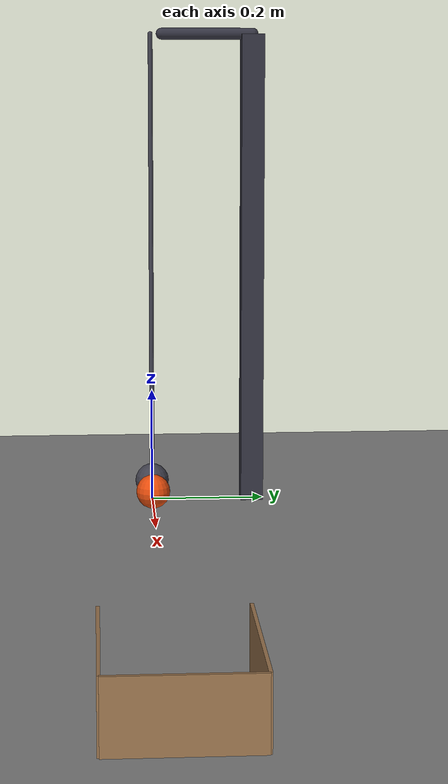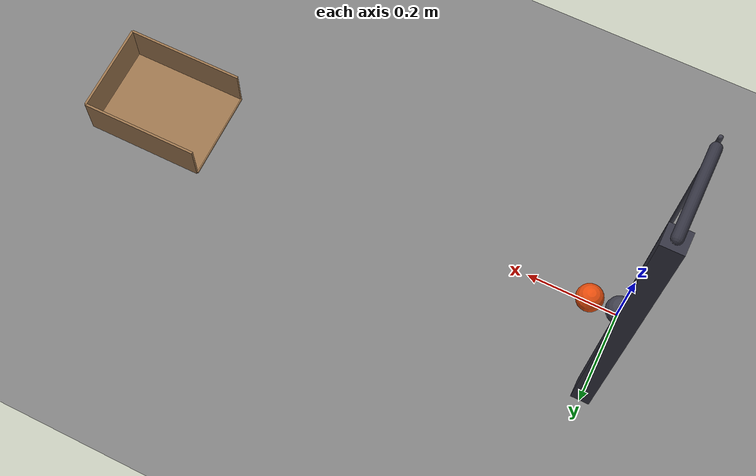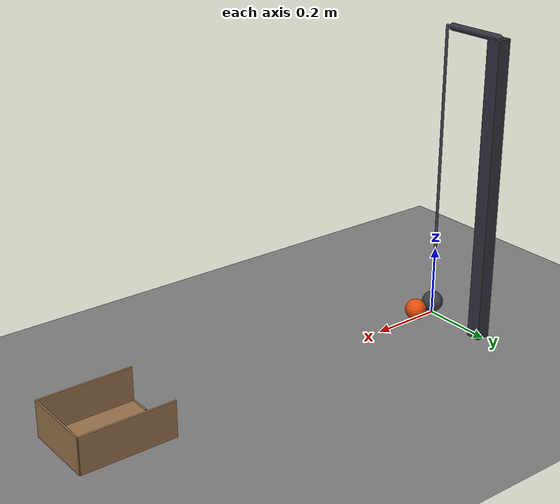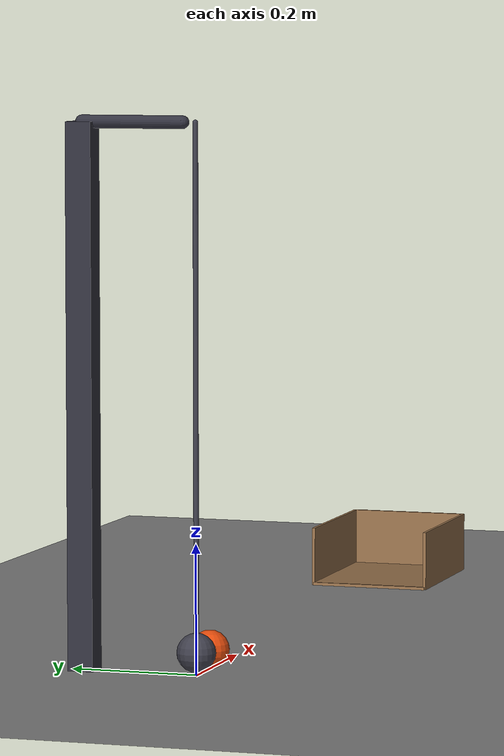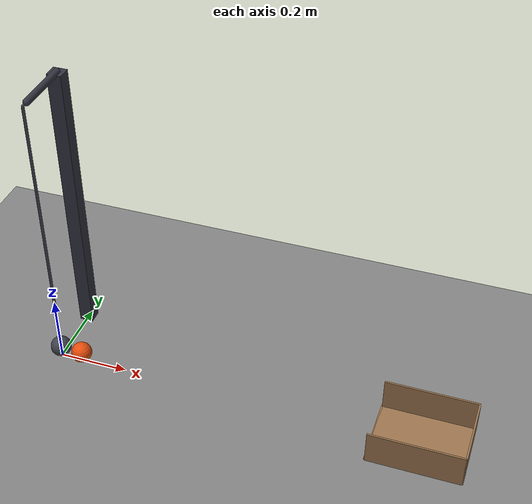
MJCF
<mujoco model="pendulum_rolls_a_ball_into_a_cup">
  <compiler angle="radian"/>
  <option timestep="0.002"/>
  <worldbody>
    <geom name="floor" type="plane" size="4 4 0.1" friction="0.6 0.001 0.0005"/>
    <body name="ball" pos="0.065 0 0.03">
      <freejoint/>
      <geom name="ball" type="sphere" pos="0 0 0" size="0.03" mass="0.08" condim="6" friction="0.6 0.001 0.0005" solref="0.01 1" rgba="0.9 0.3 0.05 1"/>
    </body>
    <body name="pendulum" pos="0 0 0.835">
      <joint name="pendulum_hinge" type="hinge" pos="0 0 0" axis="0 1 0" limited="true" range="-1.0472 1.0472" damping="0.01"/>
      <geom name="pendulum" type="sphere" pos="0 0 -0.8" size="0.03" mass="0.3" solref="0.01 1" rgba="0.25 0.25 0.3 1"/>
      <geom name="pendulum rod" type="capsule" size="0.004" fromto="0 0 0 0 0 -0.77" mass="0.02" rgba="0.25 0.25 0.3 1"/>
    </body>
    <body name="support post">
      <geom name="support post" type="box" pos="0 0.18 0.4175" size="0.02 0.02 0.4175" rgba="0.2 0.2 0.25 1"/>
    </body>
    <body name="support arm">
      <geom name="support arm" type="capsule" size="0.01" fromto="0 0.18 0.835 0 0.02 0.835" rgba="0.2 0.2 0.25 1"/>
    </body>
    <body name="cup">
      <geom name="cup_base" type="box" pos="1.065 0 0.0025" size="0.13 0.1 0.0025" friction="0.8 0.01 0.006" solref="0.01 1" rgba="0.6 0.45 0.3 1"/>
      <geom name="cup_near_wall" type="box" pos="0.935 0 0.0025" size="0.0025 0.1 0.0025" friction="0.8 0.01 0.006" solref="0.01 1" rgba="0.6 0.45 0.3 1"/>
      <geom name="cup_far_wall" type="box" pos="1.195 0 0.05" size="0.0025 0.1 0.05" friction="0.8 0.01 0.006" solref="0.01 1" rgba="0.6 0.45 0.3 1"/>
      <geom name="cup_left_wall" type="box" pos="1.065 0.1 0.05" size="0.13 0.0025 0.05" friction="0.8 0.01 0.006" solref="0.01 1" rgba="0.6 0.45 0.3 1"/>
      <geom name="cup_right_wall" type="box" pos="1.065 -0.1 0.05" size="0.13 0.0025 0.05" friction="0.8 0.01 0.006" solref="0.01 1" rgba="0.6 0.45 0.3 1"/>
    </body>
  </worldbody>
  <keyframe>
    <key name="start" qpos="0.065 0 0.03 1 0 0 0 0.698132" qvel="0 0 0 0 0 0 0"/>
  </keyframe>
</mujoco>
